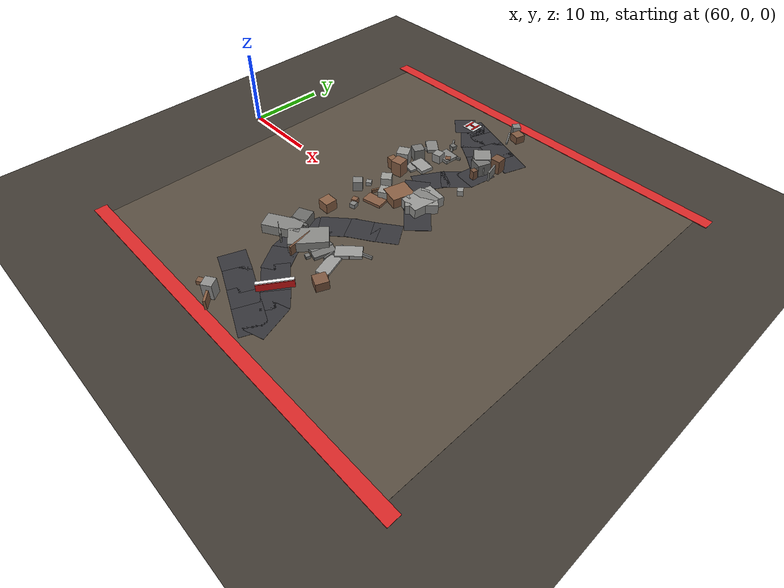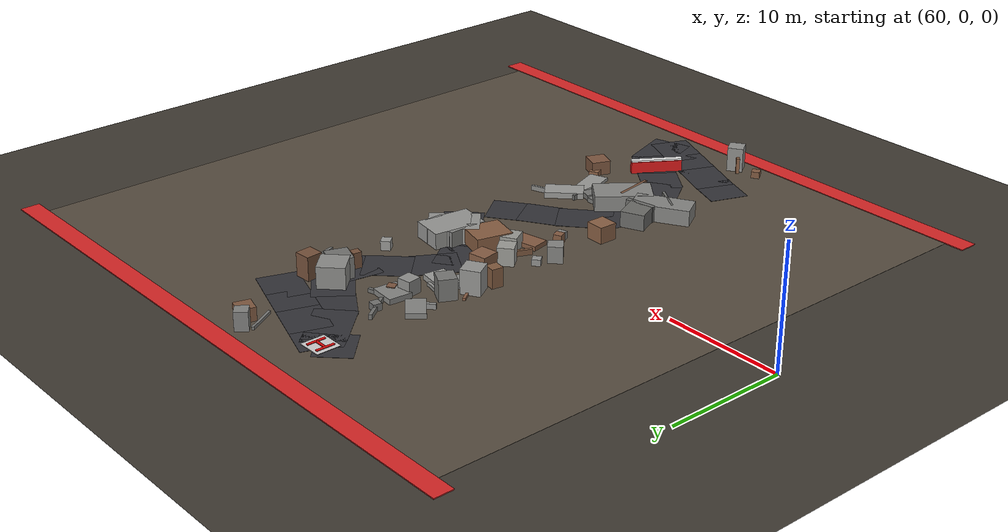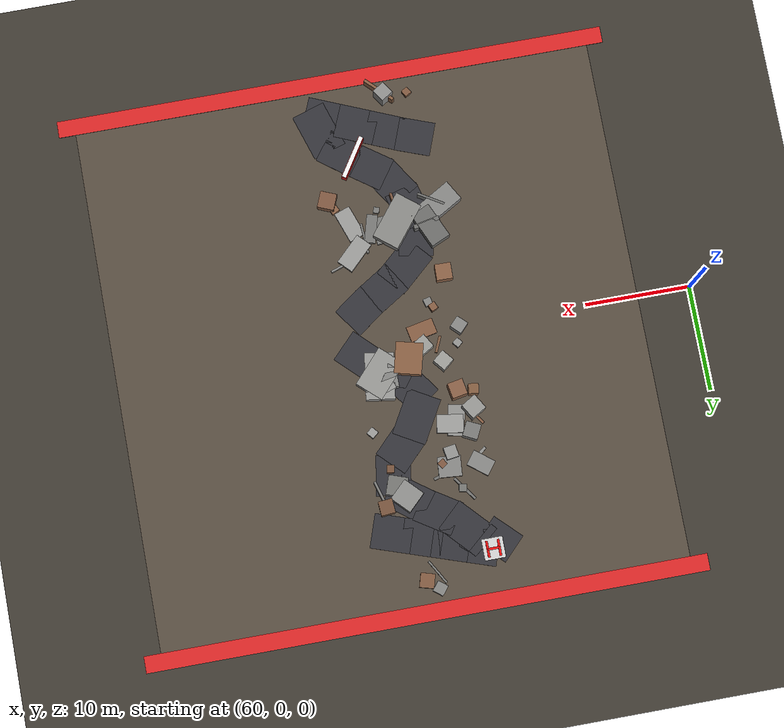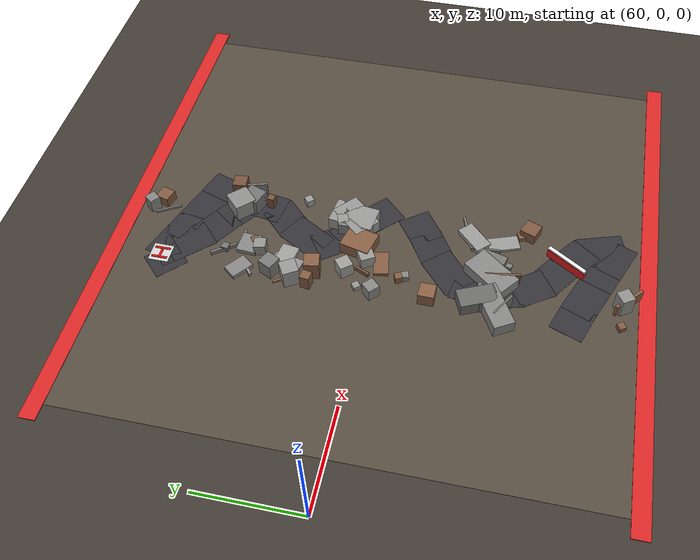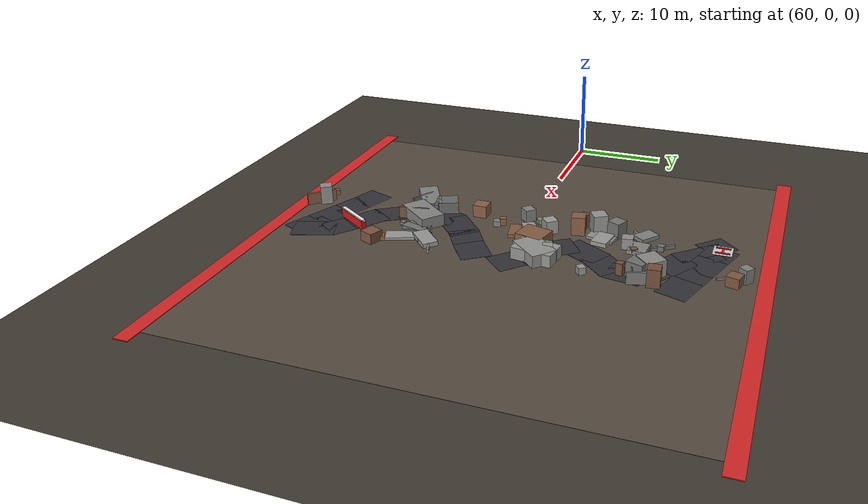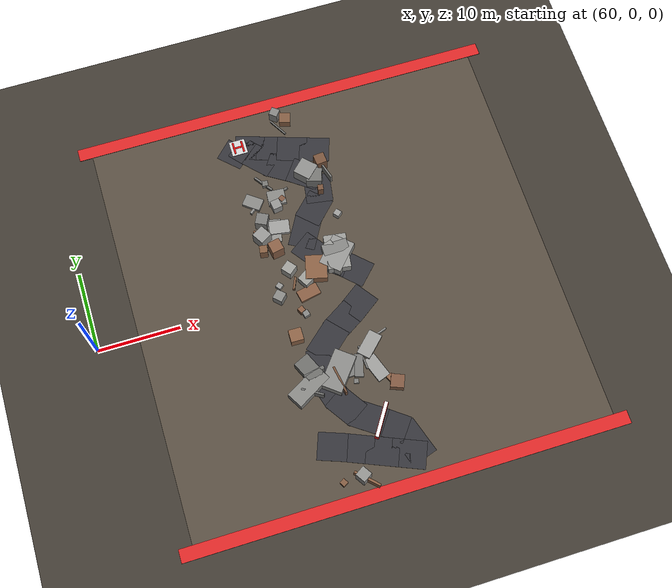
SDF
<sdf version="1.6">
 <world name="navitas_arena">
  <model name="ground_plane">
   <static>true</static>
   <link name="link">
    <collision name="collision">
     <geometry><plane><normal>0 0 1</normal><size>400 400</size></plane></geometry>
     <surface><friction><ode><mu>0.620</mu><mu2>0.620</mu2></ode></friction></surface>
    </collision>
    <visual name="visual">
     <cast_shadows>false</cast_shadows>
     <geometry><plane><normal>0 0 1</normal><size>400 400</size></plane></geometry>
     <material><ambient>0.250 0.230 0.200 1</ambient><diffuse>0.250 0.230 0.200 1</diffuse></material>
    </visual>
   </link>
  </model>
  <model name="gd_zor">
   <static>true</static>
   <pose>90.000 0.000 0.010 0 0 0.000</pose>
   <link name="link">
    <collision name="col"><geometry><box><size>50.000 50.000 0.020</size></box></geometry></collision>
    <visual name="vis">
     <geometry><box><size>50.000 50.000 0.020</size></box></geometry>
     <material><ambient>0.34 0.30 0.25 1</ambient><diffuse>0.34 0.30 0.25 1</diffuse></material>
    </visual>
   </link>
  </model>
  <model name="brd_zor_N">
   <static>true</static>
   <pose>90.000 25.800 0.040 0 0 0.000</pose>
   <link name="link">
    <collision name="col"><geometry><box><size>53.200 1.600 0.080</size></box></geometry></collision>
    <visual name="vis">
     <geometry><box><size>53.200 1.600 0.080</size></box></geometry>
     <material><ambient>0.85 0.15 0.15 1</ambient><diffuse>0.85 0.15 0.15 1</diffuse></material>
    </visual>
   </link>
  </model>
  <model name="brd_zor_S">
   <static>true</static>
   <pose>90.000 -25.800 0.040 0 0 0.000</pose>
   <link name="link">
    <collision name="col"><geometry><box><size>53.200 1.600 0.080</size></box></geometry></collision>
    <visual name="vis">
     <geometry><box><size>53.200 1.600 0.080</size></box></geometry>
     <material><ambient>0.85 0.15 0.15 1</ambient><diffuse>0.85 0.15 0.15 1</diffuse></material>
    </visual>
   </link>
  </model>
  <model name="road_zor_1_0">
   <static>true</static>
   <pose>91.082 -22.399 0.040 0 0 2.745</pose>
   <link name="link">
    <collision name="col"><geometry><box><size>4.012 3.280 0.020</size></box></geometry></collision>
    <visual name="vis">
     <geometry><box><size>4.012 3.280 0.020</size></box></geometry>
     <material><ambient>0.20 0.20 0.22 1</ambient><diffuse>0.20 0.20 0.22 1</diffuse></material>
    </visual>
   </link>
  </model>
  <model name="road_zor_1_1">
   <static>true</static>
   <pose>88.309 -21.236 0.040 0 0 2.744</pose>
   <link name="link">
    <collision name="col"><geometry><box><size>3.801 3.280 0.020</size></box></geometry></collision>
    <visual name="vis">
     <geometry><box><size>3.801 3.280 0.020</size></box></geometry>
     <material><ambient>0.20 0.20 0.22 1</ambient><diffuse>0.20 0.20 0.22 1</diffuse></material>
    </visual>
   </link>
  </model>
  <model name="road_zor_1_2">
   <static>true</static>
   <pose>85.578 -20.087 0.040 0 0 2.743</pose>
   <link name="link">
    <collision name="col"><geometry><box><size>3.925 3.280 0.020</size></box></geometry></collision>
    <visual name="vis">
     <geometry><box><size>3.925 3.280 0.020</size></box></geometry>
     <material><ambient>0.20 0.20 0.22 1</ambient><diffuse>0.20 0.20 0.22 1</diffuse></material>
    </visual>
   </link>
  </model>
  <model name="road_zor_1_3">
   <static>true</static>
   <pose>82.992 -19.058 0.040 0 0 2.786</pose>
   <link name="link">
    <collision name="col"><geometry><box><size>3.443 3.280 0.020</size></box></geometry></collision>
    <visual name="vis">
     <geometry><box><size>3.443 3.280 0.020</size></box></geometry>
     <material><ambient>0.20 0.20 0.22 1</ambient><diffuse>0.20 0.20 0.22 1</diffuse></material>
    </visual>
   </link>
  </model>
  <model name="road_zor_1_23">
   <static>true</static>
   <pose>82.163 20.266 0.040 0 0 0.793</pose>
   <link name="link">
    <collision name="col"><geometry><box><size>2.962 3.280 0.020</size></box></geometry></collision>
    <visual name="vis">
     <geometry><box><size>2.962 3.280 0.020</size></box></geometry>
     <material><ambient>0.20 0.20 0.22 1</ambient><diffuse>0.20 0.20 0.22 1</diffuse></material>
    </visual>
   </link>
  </model>
  <model name="road_zor_2_0">
   <static>true</static>
   <pose>91.950 -21.250 0.040 0 0 1.884</pose>
   <link name="link">
    <collision name="col"><geometry><box><size>4.579 3.280 0.020</size></box></geometry></collision>
    <visual name="vis">
     <geometry><box><size>4.579 3.280 0.020</size></box></geometry>
     <material><ambient>0.20 0.20 0.22 1</ambient><diffuse>0.20 0.20 0.22 1</diffuse></material>
    </visual>
   </link>
  </model>
  <model name="road_zor_2_1">
   <static>true</static>
   <pose>90.314 -18.696 0.040 0 0 2.497</pose>
   <link name="link">
    <collision name="col"><geometry><box><size>3.577 3.280 0.020</size></box></geometry></collision>
    <visual name="vis">
     <geometry><box><size>3.577 3.280 0.020</size></box></geometry>
     <material><ambient>0.20 0.20 0.22 1</ambient><diffuse>0.20 0.20 0.22 1</diffuse></material>
    </visual>
   </link>
  </model>
  <model name="road_zor_2_2">
   <static>true</static>
   <pose>87.963 -16.984 0.040 0 0 2.525</pose>
   <link name="link">
    <collision name="col"><geometry><box><size>4.040 3.280 0.020</size></box></geometry></collision>
    <visual name="vis">
     <geometry><box><size>4.040 3.280 0.020</size></box></geometry>
     <material><ambient>0.20 0.20 0.22 1</ambient><diffuse>0.20 0.20 0.22 1</diffuse></material>
    </visual>
   </link>
  </model>
  <model name="road_zor_2_3">
   <static>true</static>
   <pose>85.921 -14.918 0.040 0 0 2.152</pose>
   <link name="link">
    <collision name="col"><geometry><box><size>3.672 3.280 0.020</size></box></geometry></collision>
    <visual name="vis">
     <geometry><box><size>3.672 3.280 0.020</size></box></geometry>
     <material><ambient>0.20 0.20 0.22 1</ambient><diffuse>0.20 0.20 0.22 1</diffuse></material>
    </visual>
   </link>
  </model>
  <model name="road_zor_2_4">
   <static>true</static>
   <pose>84.753 -12.340 0.040 0 0 1.849</pose>
   <link name="link">
    <collision name="col"><geometry><box><size>3.854 3.280 0.020</size></box></geometry></collision>
    <visual name="vis">
     <geometry><box><size>3.854 3.280 0.020</size></box></geometry>
     <material><ambient>0.20 0.20 0.22 1</ambient><diffuse>0.20 0.20 0.22 1</diffuse></material>
    </visual>
   </link>
  </model>
  <model name="road_zor_2_5">
   <static>true</static>
   <pose>84.608 -9.460 0.040 0 0 1.394</pose>
   <link name="link">
    <collision name="col"><geometry><box><size>3.866 3.280 0.020</size></box></geometry></collision>
    <visual name="vis">
     <geometry><box><size>3.866 3.280 0.020</size></box></geometry>
     <material><ambient>0.20 0.20 0.22 1</ambient><diffuse>0.20 0.20 0.22 1</diffuse></material>
    </visual>
   </link>
  </model>
  <model name="road_zor_2_6">
   <static>true</static>
   <pose>86.186 -6.833 0.040 0 0 0.725</pose>
   <link name="link">
    <collision name="col"><geometry><box><size>4.420 3.280 0.020</size></box></geometry></collision>
    <visual name="vis">
     <geometry><box><size>4.420 3.280 0.020</size></box></geometry>
     <material><ambient>0.20 0.20 0.22 1</ambient><diffuse>0.20 0.20 0.22 1</diffuse></material>
    </visual>
   </link>
  </model>
  <model name="road_zor_2_7">
   <static>true</static>
   <pose>88.751 -4.889 0.040 0 0 0.558</pose>
   <link name="link">
    <collision name="col"><geometry><box><size>3.838 3.280 0.020</size></box></geometry></collision>
    <visual name="vis">
     <geometry><box><size>3.838 3.280 0.020</size></box></geometry>
     <material><ambient>0.20 0.20 0.22 1</ambient><diffuse>0.20 0.20 0.22 1</diffuse></material>
    </visual>
   </link>
  </model>
  <model name="road_zor_2_8">
   <static>true</static>
   <pose>91.078 -3.333 0.040 0 0 0.624</pose>
   <link name="link">
    <collision name="col"><geometry><box><size>3.562 3.280 0.020</size></box></geometry></collision>
    <visual name="vis">
     <geometry><box><size>3.562 3.280 0.020</size></box></geometry>
     <material><ambient>0.20 0.20 0.22 1</ambient><diffuse>0.20 0.20 0.22 1</diffuse></material>
    </visual>
   </link>
  </model>
  <model name="road_zor_2_10">
   <static>true</static>
   <pose>91.933 1.000 0.040 0 0 2.370</pose>
   <link name="link">
    <collision name="col"><geometry><box><size>3.767 3.280 0.020</size></box></geometry></collision>
    <visual name="vis">
     <geometry><box><size>3.767 3.280 0.020</size></box></geometry>
     <material><ambient>0.20 0.20 0.22 1</ambient><diffuse>0.20 0.20 0.22 1</diffuse></material>
    </visual>
   </link>
  </model>
  <model name="road_zor_2_11">
   <static>true</static>
   <pose>89.579 3.000 0.040 0 0 2.496</pose>
   <link name="link">
    <collision name="col"><geometry><box><size>4.222 3.280 0.020</size></box></geometry></collision>
    <visual name="vis">
     <geometry><box><size>4.222 3.280 0.020</size></box></geometry>
     <material><ambient>0.20 0.20 0.22 1</ambient><diffuse>0.20 0.20 0.22 1</diffuse></material>
    </visual>
   </link>
  </model>
  <model name="road_zor_2_12">
   <static>true</static>
   <pose>87.532 5.000 0.040 0 0 2.196</pose>
   <link name="link">
    <collision name="col"><geometry><box><size>3.366 3.280 0.020</size></box></geometry></collision>
    <visual name="vis">
     <geometry><box><size>3.366 3.280 0.020</size></box></geometry>
     <material><ambient>0.20 0.20 0.22 1</ambient><diffuse>0.20 0.20 0.22 1</diffuse></material>
    </visual>
   </link>
  </model>
  <model name="road_zor_2_13">
   <static>true</static>
   <pose>87.705 7.566 0.040 0 0 1.052</pose>
   <link name="link">
    <collision name="col"><geometry><box><size>4.506 3.280 0.020</size></box></geometry></collision>
    <visual name="vis">
     <geometry><box><size>4.506 3.280 0.020</size></box></geometry>
     <material><ambient>0.20 0.20 0.22 1</ambient><diffuse>0.20 0.20 0.22 1</diffuse></material>
    </visual>
   </link>
  </model>
  <model name="road_zor_2_14">
   <static>true</static>
   <pose>89.608 10.157 0.040 0 0 0.794</pose>
   <link name="link">
    <collision name="col"><geometry><box><size>3.777 3.280 0.020</size></box></geometry></collision>
    <visual name="vis">
     <geometry><box><size>3.777 3.280 0.020</size></box></geometry>
     <material><ambient>0.20 0.20 0.22 1</ambient><diffuse>0.20 0.20 0.22 1</diffuse></material>
    </visual>
   </link>
  </model>
  <model name="road_zor_2_15">
   <static>true</static>
   <pose>90.846 12.629 0.040 0 0 1.413</pose>
   <link name="link">
    <collision name="col"><geometry><box><size>3.830 3.280 0.020</size></box></geometry></collision>
    <visual name="vis">
     <geometry><box><size>3.830 3.280 0.020</size></box></geometry>
     <material><ambient>0.20 0.20 0.22 1</ambient><diffuse>0.20 0.20 0.22 1</diffuse></material>
    </visual>
   </link>
  </model>
  <model name="road_zor_2_16">
   <static>true</static>
   <pose>89.838 14.984 0.040 0 0 2.509</pose>
   <link name="link">
    <collision name="col"><geometry><box><size>3.970 3.280 0.020</size></box></geometry></collision>
    <visual name="vis">
     <geometry><box><size>3.970 3.280 0.020</size></box></geometry>
     <material><ambient>0.20 0.20 0.22 1</ambient><diffuse>0.20 0.20 0.22 1</diffuse></material>
    </visual>
   </link>
  </model>
  <model name="road_zor_2_17">
   <static>true</static>
   <pose>87.344 16.696 0.040 0 0 2.572</pose>
   <link name="link">
    <collision name="col"><geometry><box><size>3.883 3.280 0.020</size></box></geometry></collision>
    <visual name="vis">
     <geometry><box><size>3.883 3.280 0.020</size></box></geometry>
     <material><ambient>0.20 0.20 0.22 1</ambient><diffuse>0.20 0.20 0.22 1</diffuse></material>
    </visual>
   </link>
  </model>
  <model name="road_zor_2_18">
   <static>true</static>
   <pose>84.860 18.815 0.040 0 0 2.322</pose>
   <link name="link">
    <collision name="col"><geometry><box><size>4.497 3.280 0.020</size></box></geometry></collision>
    <visual name="vis">
     <geometry><box><size>4.497 3.280 0.020</size></box></geometry>
     <material><ambient>0.20 0.20 0.22 1</ambient><diffuse>0.20 0.20 0.22 1</diffuse></material>
    </visual>
   </link>
  </model>
  <model name="road_zor_2_19">
   <static>true</static>
   <pose>83.260 20.565 0.040 0 0 2.279</pose>
   <link name="link">
    <collision name="col"><geometry><box><size>2.046 3.280 0.020</size></box></geometry></collision>
    <visual name="vis">
     <geometry><box><size>2.046 3.280 0.020</size></box></geometry>
     <material><ambient>0.20 0.20 0.22 1</ambient><diffuse>0.20 0.20 0.22 1</diffuse></material>
    </visual>
   </link>
  </model>
  <model name="road_zor_3_24">
   <static>true</static>
   <pose>91.942 17.956 0.040 0 0 2.815</pose>
   <link name="link">
    <collision name="col"><geometry><box><size>3.741 3.280 0.020</size></box></geometry></collision>
    <visual name="vis">
     <geometry><box><size>3.741 3.280 0.020</size></box></geometry>
     <material><ambient>0.20 0.20 0.22 1</ambient><diffuse>0.20 0.20 0.22 1</diffuse></material>
    </visual>
   </link>
  </model>
  <model name="road_zor_3_25">
   <static>true</static>
   <pose>89.254 18.864 0.040 0 0 2.817</pose>
   <link name="link">
    <collision name="col"><geometry><box><size>3.734 3.280 0.020</size></box></geometry></collision>
    <visual name="vis">
     <geometry><box><size>3.734 3.280 0.020</size></box></geometry>
     <material><ambient>0.20 0.20 0.22 1</ambient><diffuse>0.20 0.20 0.22 1</diffuse></material>
    </visual>
   </link>
  </model>
  <model name="road_zor_3_26">
   <static>true</static>
   <pose>86.697 19.723 0.040 0 0 2.818</pose>
   <link name="link">
    <collision name="col"><geometry><box><size>3.459 3.280 0.020</size></box></geometry></collision>
    <visual name="vis">
     <geometry><box><size>3.459 3.280 0.020</size></box></geometry>
     <material><ambient>0.20 0.20 0.22 1</ambient><diffuse>0.20 0.20 0.22 1</diffuse></material>
    </visual>
   </link>
  </model>
  <model name="road_zor_3_27">
   <static>true</static>
   <pose>84.185 20.565 0.040 0 0 2.818</pose>
   <link name="link">
    <collision name="col"><geometry><box><size>3.639 3.280 0.020</size></box></geometry></collision>
    <visual name="vis">
     <geometry><box><size>3.639 3.280 0.020</size></box></geometry>
     <material><ambient>0.20 0.20 0.22 1</ambient><diffuse>0.20 0.20 0.22 1</diffuse></material>
    </visual>
   </link>
  </model>
  <model name="bar_zor_2">
   <static>true</static>
   <pose>89.244 -17.892 0.500 0 0 4.139</pose>
   <link name="link">
    <collision name="col"><geometry><box><size>4.280 0.500 1.000</size></box></geometry></collision>
    <visual name="vis">
     <geometry><box><size>4.280 0.500 1.000</size></box></geometry>
     <material><ambient>0.85 0.10 0.10 1</ambient><diffuse>0.85 0.10 0.10 1</diffuse></material>
    </visual>
   </link>
  </model>
  <model name="bar_zor_2b">
   <static>true</static>
   <pose>89.244 -17.892 1.000 0 0 4.139</pose>
   <link name="link">
    <collision name="col"><geometry><box><size>4.280 0.400 0.300</size></box></geometry></collision>
    <visual name="vis">
     <geometry><box><size>4.280 0.400 0.300</size></box></geometry>
     <material><ambient>0.95 0.95 0.95 1</ambient><diffuse>0.95 0.95 0.95 1</diffuse></material>
    </visual>
   </link>
  </model>
  <model name="blk_zor_2_0_0">
   <static>true</static>
   <pose>83.167 -10.005 0.675 0 0 1.993</pose>
   <link name="link">
    <collision name="col"><geometry><box><size>3.576 1.982 1.350</size></box></geometry></collision>
    <visual name="vis">
     <geometry><box><size>3.576 1.982 1.350</size></box></geometry>
     <material><ambient>0.42 0.42 0.41 1</ambient><diffuse>0.42 0.42 0.41 1</diffuse></material>
    </visual>
   </link>
  </model>
  <model name="blk_zor_2_0_1">
   <static>true</static>
   <pose>83.486 -10.333 0.675 0 0 0.208</pose>
   <link name="link">
    <collision name="col"><geometry><box><size>2.549 0.409 1.350</size></box></geometry></collision>
    <visual name="vis">
     <geometry><box><size>2.549 0.409 1.350</size></box></geometry>
     <material><ambient>0.43 0.43 0.42 1</ambient><diffuse>0.43 0.43 0.42 1</diffuse></material>
    </visual>
   </link>
  </model>
  <model name="blk_zor_2_0_2">
   <static>true</static>
   <pose>86.194 -10.996 0.675 0 0 0.898</pose>
   <link name="link">
    <collision name="col"><geometry><box><size>4.724 2.658 1.350</size></box></geometry></collision>
    <visual name="vis">
     <geometry><box><size>4.724 2.658 1.350</size></box></geometry>
     <material><ambient>0.53 0.53 0.52 1</ambient><diffuse>0.53 0.53 0.52 1</diffuse></material>
    </visual>
   </link>
  </model>
  <model name="blk_zor_2_0_3">
   <static>true</static>
   <pose>82.643 -12.527 0.675 0 0 2.599</pose>
   <link name="link">
    <collision name="col"><geometry><box><size>2.730 0.220 1.350</size></box></geometry></collision>
    <visual name="vis">
     <geometry><box><size>2.730 0.220 1.350</size></box></geometry>
     <material><ambient>0.43 0.43 0.42 1</ambient><diffuse>0.43 0.43 0.42 1</diffuse></material>
    </visual>
   </link>
  </model>
  <model name="blk_zor_2_0_4">
   <static>true</static>
   <pose>82.400 -11.771 0.675 0 0 0.525</pose>
   <link name="link">
    <collision name="col"><geometry><box><size>4.765 2.098 1.350</size></box></geometry></collision>
    <visual name="vis">
     <geometry><box><size>4.765 2.098 1.350</size></box></geometry>
     <material><ambient>0.52 0.52 0.51 1</ambient><diffuse>0.52 0.52 0.51 1</diffuse></material>
    </visual>
   </link>
  </model>
  <model name="blk_zor_2_0_5">
   <static>true</static>
   <pose>86.069 -12.081 0.675 0 0 1.732</pose>
   <link name="link">
    <collision name="col"><geometry><box><size>3.394 0.239 1.350</size></box></geometry></collision>
    <visual name="vis">
     <geometry><box><size>3.394 0.239 1.350</size></box></geometry>
     <material><ambient>0.47 0.33 0.24 1</ambient><diffuse>0.47 0.33 0.24 1</diffuse></material>
    </visual>
   </link>
  </model>
  <model name="blk_zor_2_1_0">
   <static>true</static>
   <pose>90.370 3.113 0.675 0 0 0.835</pose>
   <link name="link">
    <collision name="col"><geometry><box><size>4.048 2.838 1.350</size></box></geometry></collision>
    <visual name="vis">
     <geometry><box><size>4.048 2.838 1.350</size></box></geometry>
     <material><ambient>0.58 0.58 0.57 1</ambient><diffuse>0.58 0.58 0.57 1</diffuse></material>
    </visual>
   </link>
  </model>
  <model name="blk_zor_2_1_1">
   <static>true</static>
   <pose>90.408 3.879 0.675 0 0 0.014</pose>
   <link name="link">
    <collision name="col"><geometry><box><size>3.144 1.468 1.350</size></box></geometry></collision>
    <visual name="vis">
     <geometry><box><size>3.144 1.468 1.350</size></box></geometry>
     <material><ambient>0.51 0.51 0.50 1</ambient><diffuse>0.51 0.51 0.50 1</diffuse></material>
    </visual>
   </link>
  </model>
  <model name="blk_zor_2_1_2">
   <static>true</static>
   <pose>90.462 3.319 0.675 0 0 1.431</pose>
   <link name="link">
    <collision name="col"><geometry><box><size>4.420 2.763 1.350</size></box></geometry></collision>
    <visual name="vis">
     <geometry><box><size>4.420 2.763 1.350</size></box></geometry>
     <material><ambient>0.59 0.59 0.58 1</ambient><diffuse>0.59 0.59 0.58 1</diffuse></material>
    </visual>
   </link>
  </model>
  <model name="blk_zor_2_1_3">
   <static>true</static>
   <pose>89.186 2.361 0.675 0 0 1.490</pose>
   <link name="link">
    <collision name="col"><geometry><box><size>0.725 0.725 1.350</size></box></geometry></collision>
    <visual name="vis">
     <geometry><box><size>0.725 0.725 1.350</size></box></geometry>
     <material><ambient>0.52 0.52 0.51 1</ambient><diffuse>0.52 0.52 0.51 1</diffuse></material>
    </visual>
   </link>
  </model>
  <model name="blk_zor_2_1_4">
   <static>true</static>
   <pose>89.775 4.320 0.675 0 0 0.311</pose>
   <link name="link">
    <collision name="col"><geometry><box><size>1.062 1.062 1.350</size></box></geometry></collision>
    <visual name="vis">
     <geometry><box><size>1.062 1.062 1.350</size></box></geometry>
     <material><ambient>0.59 0.59 0.58 1</ambient><diffuse>0.59 0.59 0.58 1</diffuse></material>
    </visual>
   </link>
  </model>
  <model name="blk_zor_2_1_5">
   <static>true</static>
   <pose>87.484 2.136 0.675 0 0 2.896</pose>
   <link name="link">
    <collision name="col"><geometry><box><size>2.596 3.007 1.350</size></box></geometry></collision>
    <visual name="vis">
     <geometry><box><size>2.596 3.007 1.350</size></box></geometry>
     <material><ambient>0.53 0.37 0.26 1</ambient><diffuse>0.53 0.37 0.26 1</diffuse></material>
    </visual>
   </link>
  </model>
  <model name="blk_zor_2_2_0">
   <static>true</static>
   <pose>90.983 13.378 0.675 0 0 2.330</pose>
   <link name="link">
    <collision name="col"><geometry><box><size>0.930 0.930 1.350</size></box></geometry></collision>
    <visual name="vis">
     <geometry><box><size>0.930 0.930 1.350</size></box></geometry>
     <material><ambient>0.53 0.53 0.52 1</ambient><diffuse>0.53 0.53 0.52 1</diffuse></material>
    </visual>
   </link>
  </model>
  <model name="blk_zor_2_2_1">
   <static>true</static>
   <pose>90.729 13.791 0.877 0 0 1.236</pose>
   <link name="link">
    <collision name="col"><geometry><box><size>1.851 1.851 1.754</size></box></geometry></collision>
    <visual name="vis">
     <geometry><box><size>1.851 1.851 1.754</size></box></geometry>
     <material><ambient>0.45 0.45 0.44 1</ambient><diffuse>0.45 0.45 0.44 1</diffuse></material>
    </visual>
   </link>
  </model>
  <model name="blk_zor_2_2_2">
   <static>true</static>
   <pose>89.956 14.858 0.909 0 0 0.773</pose>
   <link name="link">
    <collision name="col"><geometry><box><size>2.202 2.202 1.819</size></box></geometry></collision>
    <visual name="vis">
     <geometry><box><size>2.202 2.202 1.819</size></box></geometry>
     <material><ambient>0.55 0.55 0.54 1</ambient><diffuse>0.55 0.55 0.54 1</diffuse></material>
    </visual>
   </link>
  </model>
  <model name="blk_zor_2_2_3">
   <static>true</static>
   <pose>91.018 12.064 0.675 0 0 2.986</pose>
   <link name="link">
    <collision name="col"><geometry><box><size>0.697 0.697 1.350</size></box></geometry></collision>
    <visual name="vis">
     <geometry><box><size>0.697 0.697 1.350</size></box></geometry>
     <material><ambient>0.46 0.32 0.23 1</ambient><diffuse>0.46 0.32 0.23 1</diffuse></material>
    </visual>
   </link>
  </model>
  <model name="blk_zor_2_2_4">
   <static>true</static>
   <pose>92.319 14.324 0.675 0 0 1.861</pose>
   <link name="link">
    <collision name="col"><geometry><box><size>2.745 0.240 1.350</size></box></geometry></collision>
    <visual name="vis">
     <geometry><box><size>2.745 0.240 1.350</size></box></geometry>
     <material><ambient>0.47 0.47 0.46 1</ambient><diffuse>0.47 0.47 0.46 1</diffuse></material>
    </visual>
   </link>
  </model>
  <model name="blk_zor_2_2_5">
   <static>true</static>
   <pose>92.023 15.560 0.992 0 0 0.081</pose>
   <link name="link">
    <collision name="col"><geometry><box><size>1.348 1.348 1.983</size></box></geometry></collision>
    <visual name="vis">
     <geometry><box><size>1.348 1.348 1.983</size></box></geometry>
     <material><ambient>0.46 0.32 0.23 1</ambient><diffuse>0.46 0.32 0.23 1</diffuse></material>
    </visual>
   </link>
  </model>
  <model name="deb_zor_8">
   <static>true</static>
   <pose>83.550 5.869 1.041 0 0 0.179</pose>
   <link name="link">
    <collision name="col"><geometry><box><size>1.482 1.482 2.081</size></box></geometry></collision>
    <visual name="vis">
     <geometry><box><size>1.482 1.482 2.081</size></box></geometry>
     <material><ambient>0.53 0.37 0.27 1</ambient><diffuse>0.53 0.37 0.27 1</diffuse></material>
    </visual>
   </link>
  </model>
  <model name="deb_zor_14">
   <static>true</static>
   <pose>85.316 -23.451 1.042 0 0 2.140</pose>
   <link name="link">
    <collision name="col"><geometry><box><size>1.299 1.299 2.083</size></box></geometry></collision>
    <visual name="vis">
     <geometry><box><size>1.299 1.299 2.083</size></box></geometry>
     <material><ambient>0.56 0.56 0.55 1</ambient><diffuse>0.56 0.56 0.55 1</diffuse></material>
    </visual>
   </link>
  </model>
  <model name="deb_zor_17">
   <static>true</static>
   <pose>92.067 8.409 0.400 0 0 2.279</pose>
   <link name="link">
    <collision name="col"><geometry><box><size>0.777 0.777 0.800</size></box></geometry></collision>
    <visual name="vis">
     <geometry><box><size>0.777 0.777 0.800</size></box></geometry>
     <material><ambient>0.60 0.60 0.59 1</ambient><diffuse>0.60 0.60 0.59 1</diffuse></material>
    </visual>
   </link>
  </model>
  <model name="deb_zor_23">
   <static>true</static>
   <pose>86.130 12.404 0.271 0 0 0.573</pose>
   <link name="link">
    <collision name="col"><geometry><box><size>0.677 0.677 0.541</size></box></geometry></collision>
    <visual name="vis">
     <geometry><box><size>0.677 0.677 0.541</size></box></geometry>
     <material><ambient>0.49 0.34 0.25 1</ambient><diffuse>0.49 0.34 0.25 1</diffuse></material>
    </visual>
   </link>
  </model>
  <model name="deb_zor_27">
   <static>true</static>
   <pose>82.930 9.912 0.886 0 0 2.683</pose>
   <link name="link">
    <collision name="col"><geometry><box><size>1.444 1.444 1.773</size></box></geometry></collision>
    <visual name="vis">
     <geometry><box><size>1.444 1.444 1.773</size></box></geometry>
     <material><ambient>0.47 0.47 0.46 1</ambient><diffuse>0.47 0.47 0.46 1</diffuse></material>
    </visual>
   </link>
  </model>
  <model name="deb_zor_30">
   <static>true</static>
   <pose>82.360 7.789 1.014 0 0 0.542</pose>
   <link name="link">
    <collision name="col"><geometry><box><size>1.597 1.597 2.028</size></box></geometry></collision>
    <visual name="vis">
     <geometry><box><size>1.597 1.597 2.028</size></box></geometry>
     <material><ambient>0.58 0.58 0.57 1</ambient><diffuse>0.58 0.58 0.57 1</diffuse></material>
    </visual>
   </link>
  </model>
  <model name="deb_zor_31">
   <static>true</static>
   <pose>92.384 -14.132 0.587 0 0 1.181</pose>
   <link name="link">
    <collision name="col"><geometry><box><size>1.594 1.594 1.174</size></box></geometry></collision>
    <visual name="vis">
     <geometry><box><size>1.594 1.594 1.174</size></box></geometry>
     <material><ambient>0.49 0.34 0.25 1</ambient><diffuse>0.49 0.34 0.25 1</diffuse></material>
    </visual>
   </link>
  </model>
  <model name="deb_zor_32">
   <static>true</static>
   <pose>86.145 13.383 0.170 0 0 0.305</pose>
   <link name="link">
    <collision name="col"><geometry><box><size>2.163 0.262 0.339</size></box></geometry></collision>
    <visual name="vis">
     <geometry><box><size>2.163 0.262 0.339</size></box></geometry>
     <material><ambient>0.43 0.43 0.42 1</ambient><diffuse>0.43 0.43 0.42 1</diffuse></material>
    </visual>
   </link>
  </model>
  <model name="deb_zor_42">
   <static>true</static>
   <pose>84.114 8.584 0.155 0 0 1.370</pose>
   <link name="link">
    <collision name="col"><geometry><box><size>2.964 1.573 0.310</size></box></geometry></collision>
    <visual name="vis">
     <geometry><box><size>2.964 1.573 0.310</size></box></geometry>
     <material><ambient>0.56 0.56 0.55 1</ambient><diffuse>0.56 0.56 0.55 1</diffuse></material>
    </visual>
   </link>
  </model>
  <model name="deb_zor_49">
   <static>true</static>
   <pose>89.527 22.852 0.559 0 0 1.294</pose>
   <link name="link">
    <collision name="col"><geometry><box><size>1.362 1.362 1.118</size></box></geometry></collision>
    <visual name="vis">
     <geometry><box><size>1.362 1.362 1.118</size></box></geometry>
     <material><ambient>0.50 0.35 0.25 1</ambient><diffuse>0.50 0.35 0.25 1</diffuse></material>
    </visual>
   </link>
  </model>
  <model name="deb_zor_54">
   <static>true</static>
   <pose>92.347 -7.692 0.217 0 0 0.337</pose>
   <link name="link">
    <collision name="col"><geometry><box><size>1.722 0.190 0.434</size></box></geometry></collision>
    <visual name="vis">
     <geometry><box><size>1.722 0.190 0.434</size></box></geometry>
     <material><ambient>0.54 0.54 0.53 1</ambient><diffuse>0.54 0.54 0.53 1</diffuse></material>
    </visual>
   </link>
  </model>
  <model name="deb_zor_59">
   <static>true</static>
   <pose>84.498 15.059 0.208 0 0 2.194</pose>
   <link name="link">
    <collision name="col"><geometry><box><size>2.758 0.264 0.416</size></box></geometry></collision>
    <visual name="vis">
     <geometry><box><size>2.758 0.264 0.416</size></box></geometry>
     <material><ambient>0.44 0.44 0.43 1</ambient><diffuse>0.44 0.44 0.43 1</diffuse></material>
    </visual>
   </link>
  </model>
  <model name="deb_zor_64">
   <static>true</static>
   <pose>84.318 2.930 0.753 0 0 0.687</pose>
   <link name="link">
    <collision name="col"><geometry><box><size>1.343 1.343 1.505</size></box></geometry></collision>
    <visual name="vis">
     <geometry><box><size>1.343 1.343 1.505</size></box></geometry>
     <material><ambient>0.61 0.61 0.59 1</ambient><diffuse>0.61 0.61 0.59 1</diffuse></material>
    </visual>
   </link>
  </model>
  <model name="deb_zor_73">
   <static>true</static>
   <pose>84.487 1.219 0.245 0 0 1.162</pose>
   <link name="link">
    <collision name="col"><geometry><box><size>1.597 0.247 0.490</size></box></geometry></collision>
    <visual name="vis">
     <geometry><box><size>1.597 0.247 0.490</size></box></geometry>
     <material><ambient>0.48 0.34 0.24 1</ambient><diffuse>0.48 0.34 0.24 1</diffuse></material>
    </visual>
   </link>
  </model>
  <model name="deb_zor_77">
   <static>true</static>
   <pose>91.246 -8.903 0.235 0 0 1.082</pose>
   <link name="link">
    <collision name="col"><geometry><box><size>0.591 0.591 0.471</size></box></geometry></collision>
    <visual name="vis">
     <geometry><box><size>0.591 0.591 0.471</size></box></geometry>
     <material><ambient>0.49 0.34 0.24 1</ambient><diffuse>0.49 0.34 0.24 1</diffuse></material>
    </visual>
   </link>
  </model>
  <model name="deb_zor_88">
   <static>true</static>
   <pose>83.016 -23.430 0.289 0 0 0.530</pose>
   <link name="link">
    <collision name="col"><geometry><box><size>0.690 0.690 0.578</size></box></geometry></collision>
    <visual name="vis">
     <geometry><box><size>0.690 0.690 0.578</size></box></geometry>
     <material><ambient>0.50 0.35 0.25 1</ambient><diffuse>0.50 0.35 0.25 1</diffuse></material>
    </visual>
   </link>
  </model>
  <model name="deb_zor_90">
   <static>true</static>
   <pose>90.709 -8.768 0.261 0 0 0.776</pose>
   <link name="link">
    <collision name="col"><geometry><box><size>3.178 1.662 0.521</size></box></geometry></collision>
    <visual name="vis">
     <geometry><box><size>3.178 1.662 0.521</size></box></geometry>
     <material><ambient>0.60 0.60 0.59 1</ambient><diffuse>0.60 0.60 0.59 1</diffuse></material>
    </visual>
   </link>
  </model>
  <model name="deb_zor_94">
   <static>true</static>
   <pose>82.051 6.079 0.798 0 0 1.408</pose>
   <link name="link">
    <collision name="col"><geometry><box><size>0.949 0.949 1.596</size></box></geometry></collision>
    <visual name="vis">
     <geometry><box><size>0.949 0.949 1.596</size></box></geometry>
     <material><ambient>0.51 0.36 0.25 1</ambient><diffuse>0.51 0.36 0.25 1</diffuse></material>
    </visual>
   </link>
  </model>
  <model name="deb_zor_109">
   <static>true</static>
   <pose>88.454 23.771 0.774 0 0 0.902</pose>
   <link name="link">
    <collision name="col"><geometry><box><size>1.064 1.064 1.548</size></box></geometry></collision>
    <visual name="vis">
     <geometry><box><size>1.064 1.064 1.548</size></box></geometry>
     <material><ambient>0.51 0.51 0.50 1</ambient><diffuse>0.51 0.51 0.50 1</diffuse></material>
    </visual>
   </link>
  </model>
  <model name="deb_zor_122">
   <static>true</static>
   <pose>84.301 -2.366 0.403 0 0 0.421</pose>
   <link name="link">
    <collision name="col"><geometry><box><size>0.698 0.698 0.805</size></box></geometry></collision>
    <visual name="vis">
     <geometry><box><size>0.698 0.698 0.805</size></box></geometry>
     <material><ambient>0.52 0.36 0.26 1</ambient><diffuse>0.52 0.36 0.26 1</diffuse></material>
    </visual>
   </link>
  </model>
  <model name="deb_zor_123">
   <static>true</static>
   <pose>91.877 -13.333 0.256 0 0 0.443</pose>
   <link name="link">
    <collision name="col"><geometry><box><size>0.780 0.780 0.512</size></box></geometry></collision>
    <visual name="vis">
     <geometry><box><size>0.780 0.780 0.512</size></box></geometry>
     <material><ambient>0.54 0.38 0.27 1</ambient><diffuse>0.54 0.38 0.27 1</diffuse></material>
    </visual>
   </link>
  </model>
  <model name="deb_zor_124">
   <static>true</static>
   <pose>85.760 -0.391 0.202 0 0 0.199</pose>
   <link name="link">
    <collision name="col"><geometry><box><size>2.586 1.487 0.405</size></box></geometry></collision>
    <visual name="vis">
     <geometry><box><size>2.586 1.487 0.405</size></box></geometry>
     <material><ambient>0.52 0.36 0.26 1</ambient><diffuse>0.52 0.36 0.26 1</diffuse></material>
    </visual>
   </link>
  </model>
  <model name="deb_zor_131">
   <static>true</static>
   <pose>85.528 12.785 0.234 0 0 1.494</pose>
   <link name="link">
    <collision name="col"><geometry><box><size>1.944 2.183 0.468</size></box></geometry></collision>
    <visual name="vis">
     <geometry><box><size>1.944 2.183 0.468</size></box></geometry>
     <material><ambient>0.52 0.52 0.51 1</ambient><diffuse>0.52 0.52 0.51 1</diffuse></material>
    </visual>
   </link>
  </model>
  <model name="deb_zor_133">
   <static>true</static>
   <pose>82.746 -5.401 0.696 0 0 1.550</pose>
   <link name="link">
    <collision name="col"><geometry><box><size>1.542 1.542 1.393</size></box></geometry></collision>
    <visual name="vis">
     <geometry><box><size>1.542 1.542 1.393</size></box></geometry>
     <material><ambient>0.54 0.38 0.27 1</ambient><diffuse>0.54 0.38 0.27 1</diffuse></material>
    </visual>
   </link>
  </model>
  <model name="deb_zor_137">
   <static>true</static>
   <pose>85.177 11.532 0.626 0 0 1.722</pose>
   <link name="link">
    <collision name="col"><geometry><box><size>1.171 1.171 1.251</size></box></geometry></collision>
    <visual name="vis">
     <geometry><box><size>1.171 1.171 1.251</size></box></geometry>
     <material><ambient>0.57 0.57 0.56 1</ambient><diffuse>0.57 0.57 0.56 1</diffuse></material>
    </visual>
   </link>
  </model>
  <model name="deb_zor_140">
   <static>true</static>
   <pose>82.277 8.372 0.108 0 0 2.181</pose>
   <link name="link">
    <collision name="col"><geometry><box><size>2.272 0.228 0.217</size></box></geometry></collision>
    <visual name="vis">
     <geometry><box><size>2.272 0.228 0.217</size></box></geometry>
     <material><ambient>0.52 0.36 0.26 1</ambient><diffuse>0.52 0.36 0.26 1</diffuse></material>
    </visual>
   </link>
  </model>
  <model name="deb_zor_155">
   <static>true</static>
   <pose>82.642 1.394 0.272 0 0 2.244</pose>
   <link name="link">
    <collision name="col"><geometry><box><size>0.691 0.691 0.543</size></box></geometry></collision>
    <visual name="vis">
     <geometry><box><size>0.691 0.691 0.543</size></box></geometry>
     <material><ambient>0.57 0.57 0.56 1</ambient><diffuse>0.57 0.57 0.56 1</diffuse></material>
    </visual>
   </link>
  </model>
  <model name="deb_zor_168">
   <static>true</static>
   <pose>82.250 -0.132 0.698 0 0 2.374</pose>
   <link name="link">
    <collision name="col"><geometry><box><size>1.208 1.208 1.397</size></box></geometry></collision>
    <visual name="vis">
     <geometry><box><size>1.208 1.208 1.397</size></box></geometry>
     <material><ambient>0.52 0.52 0.51 1</ambient><diffuse>0.52 0.52 0.51 1</diffuse></material>
    </visual>
   </link>
  </model>
  <model name="deb_zor_180">
   <static>true</static>
   <pose>82.574 12.972 0.234 0 0 2.481</pose>
   <link name="link">
    <collision name="col"><geometry><box><size>2.267 1.540 0.467</size></box></geometry></collision>
    <visual name="vis">
     <geometry><box><size>2.267 1.540 0.467</size></box></geometry>
     <material><ambient>0.52 0.52 0.51 1</ambient><diffuse>0.52 0.52 0.51 1</diffuse></material>
    </visual>
   </link>
  </model>
  <model name="deb_zor_192">
   <static>true</static>
   <pose>87.777 -10.551 0.193 0 0 1.616</pose>
   <link name="link">
    <collision name="col"><geometry><box><size>2.577 1.360 0.387</size></box></geometry></collision>
    <visual name="vis">
     <geometry><box><size>2.577 1.360 0.387</size></box></geometry>
     <material><ambient>0.47 0.47 0.46 1</ambient><diffuse>0.47 0.47 0.46 1</diffuse></material>
    </visual>
   </link>
  </model>
  <model name="deb_zor_195">
   <static>true</static>
   <pose>84.687 14.956 0.295 0 0 1.413</pose>
   <link name="link">
    <collision name="col"><geometry><box><size>0.707 0.707 0.589</size></box></geometry></collision>
    <visual name="vis">
     <geometry><box><size>0.707 0.707 0.589</size></box></geometry>
     <material><ambient>0.45 0.45 0.44 1</ambient><diffuse>0.45 0.45 0.44 1</diffuse></material>
    </visual>
   </link>
  </model>
  <model name="deb_zor_208">
   <static>true</static>
   <pose>84.695 -2.933 0.315 0 0 0.252</pose>
   <link name="link">
    <collision name="col"><geometry><box><size>0.734 0.734 0.630</size></box></geometry></collision>
    <visual name="vis">
     <geometry><box><size>0.734 0.734 0.630</size></box></geometry>
     <material><ambient>0.51 0.51 0.50 1</ambient><diffuse>0.51 0.51 0.50 1</diffuse></material>
    </visual>
   </link>
  </model>
  <model name="deb_zor_210">
   <static>true</static>
   <pose>88.413 22.226 0.130 0 0 2.095</pose>
   <link name="link">
    <collision name="col"><geometry><box><size>2.607 0.201 0.261</size></box></geometry></collision>
    <visual name="vis">
     <geometry><box><size>2.607 0.201 0.261</size></box></geometry>
     <material><ambient>0.47 0.47 0.46 1</ambient><diffuse>0.47 0.47 0.46 1</diffuse></material>
    </visual>
   </link>
  </model>
  <model name="deb_zor_211">
   <static>true</static>
   <pose>85.945 1.141 0.630 0 0 0.530</pose>
   <link name="link">
    <collision name="col"><geometry><box><size>1.446 1.446 1.260</size></box></geometry></collision>
    <visual name="vis">
     <geometry><box><size>1.446 1.446 1.260</size></box></geometry>
     <material><ambient>0.60 0.60 0.58 1</ambient><diffuse>0.60 0.60 0.58 1</diffuse></material>
    </visual>
   </link>
  </model>
  <model name="deb_zor_213">
   <static>true</static>
   <pose>82.529 12.090 0.217 0 0 0.680</pose>
   <link name="link">
    <collision name="col"><geometry><box><size>1.560 0.279 0.435</size></box></geometry></collision>
    <visual name="vis">
     <geometry><box><size>1.560 0.279 0.435</size></box></geometry>
     <material><ambient>0.55 0.55 0.54 1</ambient><diffuse>0.55 0.55 0.54 1</diffuse></material>
    </visual>
   </link>
  </model>
  <model name="deb_zor_218">
   <static>true</static>
   <pose>90.652 -11.671 0.144 0 0 1.914</pose>
   <link name="link">
    <collision name="col"><geometry><box><size>3.090 1.597 0.288</size></box></geometry></collision>
    <visual name="vis">
     <geometry><box><size>3.090 1.597 0.288</size></box></geometry>
     <material><ambient>0.60 0.60 0.59 1</ambient><diffuse>0.60 0.60 0.59 1</diffuse></material>
    </visual>
   </link>
  </model>
  <model name="deb_zor_231">
   <static>true</static>
   <pose>86.918 1.180 0.220 0 0 3.106</pose>
   <link name="link">
    <collision name="col"><geometry><box><size>1.589 0.285 0.439</size></box></geometry></collision>
    <visual name="vis">
     <geometry><box><size>1.589 0.285 0.439</size></box></geometry>
     <material><ambient>0.61 0.61 0.59 1</ambient><diffuse>0.61 0.61 0.59 1</diffuse></material>
    </visual>
   </link>
  </model>
  <model name="deb_zor_265">
   <static>true</static>
   <pose>87.921 -12.544 0.220 0 0 1.294</pose>
   <link name="link">
    <collision name="col"><geometry><box><size>0.560 0.560 0.441</size></box></geometry></collision>
    <visual name="vis">
     <geometry><box><size>0.560 0.560 0.441</size></box></geometry>
     <material><ambient>0.47 0.47 0.46 1</ambient><diffuse>0.47 0.47 0.46 1</diffuse></material>
    </visual>
   </link>
  </model>
  <model name="deb_zor_271">
   <static>true</static>
   <pose>89.502 -10.032 0.225 0 0 1.636</pose>
   <link name="link">
    <collision name="col"><geometry><box><size>2.903 0.208 0.449</size></box></geometry></collision>
    <visual name="vis">
     <geometry><box><size>2.903 0.208 0.449</size></box></geometry>
     <material><ambient>0.46 0.46 0.45 1</ambient><diffuse>0.46 0.46 0.45 1</diffuse></material>
    </visual>
   </link>
  </model>
  <model name="deb_zor_276">
   <static>true</static>
   <pose>88.736 -10.853 0.230 0 0 1.306</pose>
   <link name="link">
    <collision name="col"><geometry><box><size>2.735 1.050 0.459</size></box></geometry></collision>
    <visual name="vis">
     <geometry><box><size>2.735 1.050 0.459</size></box></geometry>
     <material><ambient>0.46 0.46 0.45 1</ambient><diffuse>0.46 0.46 0.45 1</diffuse></material>
    </visual>
   </link>
  </model>
  <model name="deb_zor_282">
   <static>true</static>
   <pose>84.748 8.819 0.244 0 0 2.983</pose>
   <link name="link">
    <collision name="col"><geometry><box><size>2.503 1.736 0.489</size></box></geometry></collision>
    <visual name="vis">
     <geometry><box><size>2.503 1.736 0.489</size></box></geometry>
     <material><ambient>0.61 0.61 0.60 1</ambient><diffuse>0.61 0.61 0.60 1</diffuse></material>
    </visual>
   </link>
  </model>
  <model name="chic_zor_0">
   <static>true</static>
   <pose>85.620 -23.888 0.675 0 0 2.366</pose>
   <link name="link">
    <collision name="col"><geometry><box><size>3.314 0.283 1.350</size></box></geometry></collision>
    <visual name="vis">
     <geometry><box><size>3.314 0.283 1.350</size></box></geometry>
     <material><ambient>0.53 0.37 0.26 1</ambient><diffuse>0.53 0.37 0.26 1</diffuse></material>
    </visual>
   </link>
  </model>
  <model name="hbpad_zor">
   <static>true</static>
   <pose>82.887 21.000 0.070 0 0 0.000</pose>
   <link name="link">
    <collision name="col"><geometry><box><size>2.000 2.000 0.040</size></box></geometry></collision>
    <visual name="vis">
     <geometry><box><size>2.000 2.000 0.040</size></box></geometry>
     <material><ambient>0.82 0.82 0.82 1</ambient><diffuse>0.82 0.82 0.82 1</diffuse></material>
    </visual>
   </link>
  </model>
  <model name="H_zor_l">
   <static>true</static>
   <pose>82.337 21.000 0.100 0 0 0.000</pose>
   <link name="link">
    <collision name="col"><geometry><box><size>0.220 1.550 0.100</size></box></geometry></collision>
    <visual name="vis">
     <geometry><box><size>0.220 1.550 0.100</size></box></geometry>
     <material><ambient>0.90 0.05 0.05 1</ambient><diffuse>0.90 0.05 0.05 1</diffuse></material>
    </visual>
   </link>
  </model>
  <model name="H_zor_r">
   <static>true</static>
   <pose>83.437 21.000 0.100 0 0 0.000</pose>
   <link name="link">
    <collision name="col"><geometry><box><size>0.220 1.550 0.100</size></box></geometry></collision>
    <visual name="vis">
     <geometry><box><size>0.220 1.550 0.100</size></box></geometry>
     <material><ambient>0.90 0.05 0.05 1</ambient><diffuse>0.90 0.05 0.05 1</diffuse></material>
    </visual>
   </link>
  </model>
  <model name="H_zor_b">
   <static>true</static>
   <pose>82.887 21.000 0.100 0 0 0.000</pose>
   <link name="link">
    <collision name="col"><geometry><box><size>1.100 0.220 0.100</size></box></geometry></collision>
    <visual name="vis">
     <geometry><box><size>1.100 0.220 0.100</size></box></geometry>
     <material><ambient>0.90 0.05 0.05 1</ambient><diffuse>0.90 0.05 0.05 1</diffuse></material>
    </visual>
   </link>
  </model>
 </world>
</sdf>
